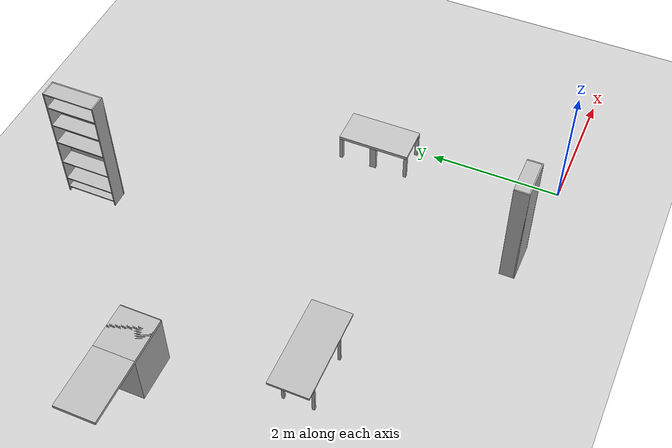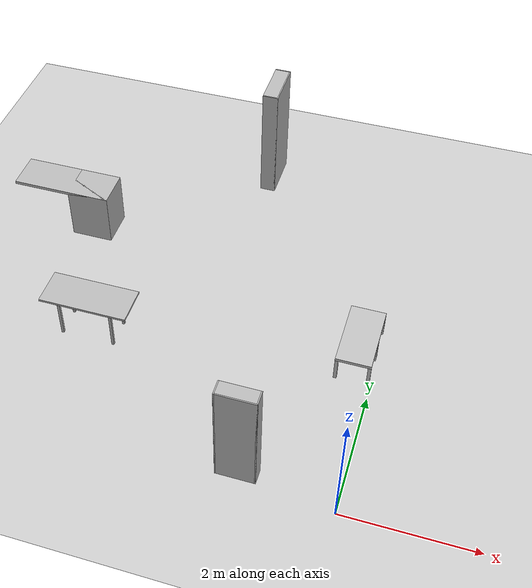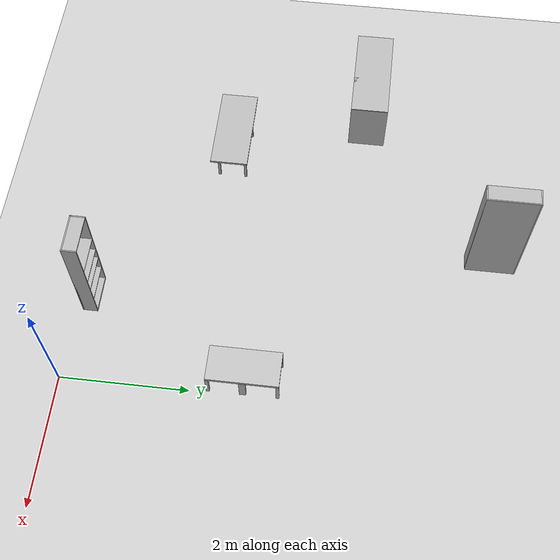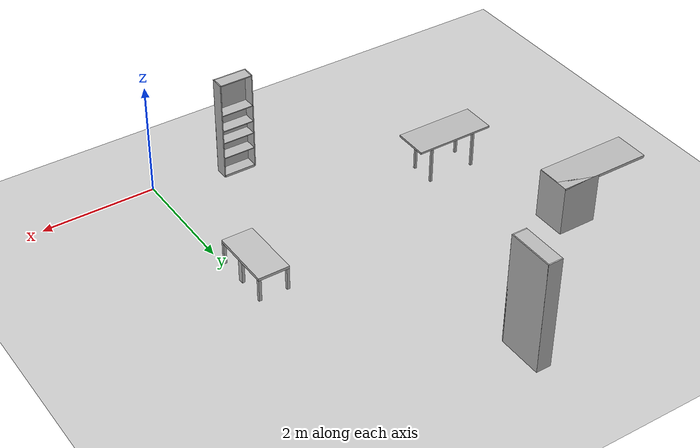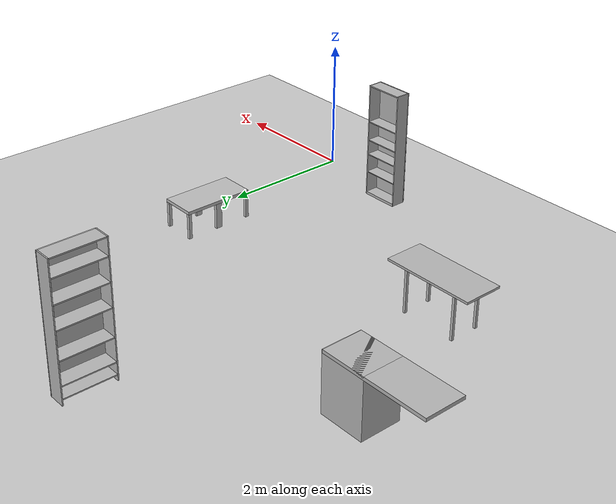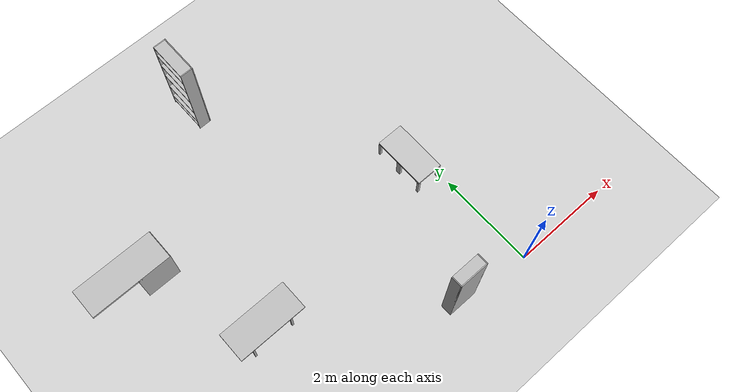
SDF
<sdf version="1.6">
 <world name="rwc2018">
  <light name="sun" type="directional">
   <direction>0.5 0.1 -0.9</direction>
   <pose>0 0 10 0 0 0</pose>
   <specular>0.2 0.2 0.2 1</specular>
   <diffuse>0.8 0.8 0.8 1</diffuse>
   <attenuation>
    <range>1000</range>
    <quadratic>0.001</quadratic>
    <constant>0.9</constant>
    <linear>0.01</linear>
   </attenuation>
  </light>
  <model name="initial_pose" type="waypoint"><pose>-11.0 8.5 0 0 0 0.0</pose><static>true</static></model>
  <model name="registration_table1" type="waypoint">
   <pose>-2.5 3.5 0 0 0 -1.57079632679</pose>
   <static>true</static>
  </model>
  <model name="registration_table2" type="waypoint">
   <pose>-3.5 4.5 0 0 0 -1.57079632679</pose>
   <static>true</static>
  </model>
  <model name="registration_table3" type="waypoint">
   <pose>-4.5 5.5 0 0 0 -1.57079632679</pose>
   <static>true</static>
  </model>
  <model name="exit_1_rips" type="waypoint">
   <pose>0.0 -1.2 0 0 0 -1.57079632679</pose>
   <static>true</static>
  </model>
  <model name="exit_2_rips" type="waypoint">
   <pose>0.0 -0.8 0 0 0 -1.57079632679</pose>
   <static>true</static>
  </model>
  <model name="exit_3_rips" type="waypoint">
   <pose>0.0 -0.4 0 0 0 -1.57079632679</pose>
   <static>true</static>
  </model>
  <model name="help_me_carry_starting_point" type="waypoint">
   <pose>-5.5 7.0 0 0 0 0.0</pose>
   <static>true</static>
  </model>
  <model name="gpsr_starting_point" type="waypoint"><pose>-5.5 7.0 0 0 0 0.0</pose><static>true</static></model>
  <model name="gpsr_meeting_point" type="waypoint"><pose>-5.5 7.0 0 0 0 0.0</pose><static>true</static></model>
  <model name="gpsr_exit_door" type="waypoint">
   <pose>0.0 -1.2 0 0 0 -1.57079632679</pose>
   <static>true</static>
  </model>
  <model name="gpsr_entrance" type="waypoint"><pose>-9.0 8.0 0 0 0 3.14</pose><static>true</static></model>
  <model name="eegpsr_starting_point1" type="waypoint">
   <pose>-4.25 8.5 0 0 0 -1.57079632679</pose>
   <static>true</static>
  </model>
  <model name="eegpsr_starting_point2" type="waypoint">
   <pose>-6 0.75 0 0 0 1.57079632679</pose>
   <static>true</static>
  </model>
  <model name="door" type="waypoint"><pose>-9.5 8.5 0 0 0 3.14159265359</pose><static>true</static></model>
  <model name="corridor" type="room">
   <link name="in">
    <virtual_volume name="in_vv">
     <geometry><box><size>3.5 1.5 2.01</size></box></geometry>
     <pose>2.0 -0.5 1.005 0 0 0</pose>
    </virtual_volume>
   </link>
   <pose>-10.5 8.5 0 0 0 0</pose>
   <static>true</static>
  </model>
  <model name="kitchen" type="room">
   <link name="in">
    <virtual_volume name="in_vv">
     <geometry><box><size>3.1 3.4 2.01</size></box></geometry>
     <pose>-0.65 1.0 1.005 0 0 0</pose>
    </virtual_volume>
   </link>
   <pose>-4.0 6.0 0 0 0 0</pose>
   <static>true</static>
  </model>
  <model name="bedroom" type="room">
   <link name="in">
    <virtual_volume name="in_vv">
     <geometry><box><size>2.9 2.9 2.01</size></box></geometry>
     <pose>0.75 0.25 1.005 0 0 0</pose>
    </virtual_volume>
   </link>
   <pose>-1.0 7.0 0 0 0 0</pose>
   <static>true</static>
  </model>
  <model name="dining_room" type="room">
   <link name="in">
    <virtual_volume name="in_vv">
     <geometry><box><size>3.4 4.4 2.01</size></box></geometry>
     <pose>-0.5 -0.5 1.005 0 0 0</pose>
    </virtual_volume>
   </link>
   <pose>-4.0 3.0 0 0 0 0</pose>
   <static>true</static>
  </model>
  <model name="living_room" type="room">
   <link name="in">
    <virtual_volume name="in_vv">
     <geometry><box><size>3.4 4.4 2.01</size></box></geometry>
     <pose>0.5 -0.5 1.005 0 0 0</pose>
    </virtual_volume>
   </link>
   <pose>-1.0 3.0 0 0 0 0</pose>
   <static>true</static>
  </model>
  <include><name>floor</name><uri>model://ground_plane</uri></include>
  <include>
   <pose>-1.46 0.24 0.0 0 0 1.57079632679</pose>
   <name>bookcase</name>
   <uri>model://rwc2018/bookcase</uri>
  </include>
  <include>
   <pose>-2.69 6.45 0.0 0 0 3.14159265359</pose>
   <name>cupboard</name>
   <uri>model://rwc2018/cupboard</uri>
  </include>
  <include>
   <pose>-4.4 2.1 0.0 0 0 1.57079632679</pose>
   <name>dining_table</name>
   <uri>model://rwc2018/diningtable</uri>
  </include>
  <include>
   <pose>-5.7 4.3 0.0 0 0 1.57079632679</pose>
   <name>counter</name>
   <uri>model://rwc2018/counter</uri>
  </include>
  <include>
   <pose>-5.22 4.3 0.0 0 0 1.57079632679</pose>
   <name>dishwasher</name>
   <uri>model://rwc2018/dishwasher</uri>
  </include>
  <include>
   <pose>-0.3 2.8 0.0 0 0 1.57079632679</pose>
   <name>end_table</name>
   <uri>model://rwc2018/endtable</uri>
  </include>
  <physics type="ode">
   <real_time_update_rate>333.0</real_time_update_rate>
   <max_step_size>0.003</max_step_size>
   <ode><constraints><cfm>0.0001</cfm></constraints><solver><type>quick</type><iters>100</iters></solver></ode>
  </physics>
 </world>
</sdf>

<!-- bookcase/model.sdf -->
<sdf version="1.6">
  <model name="rwc2018/bookcase">
    <link name="1_link">
      <collision name="1_col">
        <geometry>
          <box>
            <size>0.23 0.018 1.82</size>
          </box>
        </geometry>
      </collision>
      <visual name="1_vis">
        <geometry>
          <box>
            <size>0.23 0.018 1.82</size>
          </box>
        </geometry>
      </visual>
      <pose>0 -0.291 0.91 0 0 0</pose>
    </link>
    <link name="2_link">
      <collision name="2_col">
        <geometry>
          <box>
            <size>0.23 0.018 1.82</size>
          </box>
        </geometry>
      </collision>
      <visual name="2_vis">
        <geometry>
          <box>
            <size>0.23 0.018 1.82</size>
          </box>
        </geometry>
      </visual>
      <pose>0 0.291 0.91 0 0 0</pose>
    </link>
    <link name="3_link">
      <collision name="3_col">
        <geometry>
          <box>
            <size>0.018 0.6 1.82</size>
          </box>
        </geometry>
      </collision>
      <visual name="3_vis">
        <geometry>
          <box>
            <size>0.018 0.6 1.82</size>
          </box>
        </geometry>
      </visual>
      <pose>-0.106 0 0.91 0 0 0</pose>
    </link>
    <link name="4_link">
      <collision name="4_col">
        <geometry>
          <box>
            <size>0.212 0.564 0.018</size>
          </box>
        </geometry>
      </collision>
      <visual name="4_vis">
        <geometry>
          <box>
            <size>0.212 0.564 0.018</size>
          </box>
        </geometry>
      </visual>
      <pose>0.009 0 1.811 0 0 0</pose>
    </link>
    <link name="5_link">
      <collision name="5_col">
        <geometry>
          <box>
            <size>0.212 0.564 0.065</size>
          </box>
        </geometry>
      </collision>
      <visual name="5_vis">
        <geometry>
          <box>
            <size>0.212 0.564 0.065</size>
          </box>
        </geometry>
      </visual>
      <pose>0.009 0 0.001 0 0 0</pose>
    </link>
    <link name="6_link">
      <collision name="6_col">
        <geometry>
          <box>
            <size>0.212 0.564 0.015</size>
          </box>
        </geometry>
      </collision>
      <visual name="6_vis">
        <geometry>
          <box>
            <size>0.212 0.564 0.015</size>
          </box>
        </geometry>
      </visual>
      <pose>0.009 0 0.38 0 0 0</pose>
    </link>
    <link name="7_link">
      <collision name="7_col">
        <geometry>
          <box>
            <size>0.212 0.564 0.015</size>
          </box>
        </geometry>
      </collision>
      <visual name="7_vis">
        <geometry>
          <box>
            <size>0.212 0.564 0.015</size>
          </box>
        </geometry>
      </visual>
      <pose>0.009 0 0.68 0 0 0</pose>
    </link>
    <link name="8_link">
      <collision name="8_col">
        <geometry>
          <box>
            <size>0.212 0.564 0.015</size>
          </box>
        </geometry>
      </collision>
      <visual name="8_vis">
        <geometry>
          <box>
            <size>0.212 0.564 0.015</size>
          </box>
        </geometry>
      </visual>
      <pose>0.009 0 0.92 0 0 0</pose>
    </link>
    <link name="9_link">
      <collision name="9_col">
        <geometry>
          <box>
            <size>0.212 0.564 0.015</size>
          </box>
        </geometry>
      </collision>
      <visual name="9_vis">
        <geometry>
          <box>
            <size>0.212 0.564 0.015</size>
          </box>
        </geometry>
      </visual>
      <pose>0.009 0 1.225 0 0 0</pose>
    </link>
    <link name="in_front_of">
      <virtual_volume name="in_front_of_vv">
        <geometry>
          <box>
            <size>0.2 0.4 0.01</size>
          </box>
        </geometry>
        <pose>0.615 0.0 0.005 0 0 0</pose>
      </virtual_volume>
    </link>
    <link name="shelf1">
      <virtual_volume name="shelf1_vv">
        <geometry>
          <box>
            <size>0.192 0.504 0.19</size>
          </box>
        </geometry>
        <pose>0.009 0.0 0.17 0 0 0</pose>
      </virtual_volume>
    </link>
    <link name="shelf2">
      <virtual_volume name="shelf2_vv">
        <geometry>
          <box>
            <size>0.192 0.504 0.19</size>
          </box>
        </geometry>
        <pose>0.009 0.0 0.5 0 0 0</pose>
      </virtual_volume>
    </link>
    <link name="shelf3">
      <virtual_volume name="shelf3_vv">
        <geometry>
          <box>
            <size>0.192 0.504 0.19</size>
          </box>
        </geometry>
        <pose>0.009 0.0 0.8 0 0 0</pose>
      </virtual_volume>
    </link>
    <link name="shelf4">
      <virtual_volume name="shelf4_vv">
        <geometry>
          <box>
            <size>0.192 0.504 0.19</size>
          </box>
        </geometry>
        <pose>0.009 0.0 1.04 0 0 0</pose>
      </virtual_volume>
    </link>
    <link name="shelf5">
      <virtual_volume name="shelf5_vv">
        <geometry>
          <box>
            <size>0.192 0.504 0.19</size>
          </box>
        </geometry>
        <pose>0.009 0.0 1.345 0 0 0</pose>
      </virtual_volume>
    </link>
    <link name="on_top_of">
      <virtual_volume name="on_top_of_vv">
        <geometry>
          <box>
            <size>0.192 0.504 0.2</size>
          </box>
        </geometry>
        <pose>0.009 0.0 0.795 0 0 0</pose>
      </virtual_volume>
    </link>
    <static>true</static>
  </model>
</sdf>

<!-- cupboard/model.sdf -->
<sdf version="1.6">
  <model name="rwc2018/cupboard">
    <link name="1_link">
      <collision name="1_col">
        <geometry>
          <box>
            <size>0.26 0.018 2.02</size>
          </box>
        </geometry>
      </collision>
      <visual name="1_vis">
        <geometry>
          <box>
            <size>0.26 0.018 2.02</size>
          </box>
        </geometry>
      </visual>
      <pose>0 -0.391 1.01 0 0 0</pose>
    </link>
    <link name="2_link">
      <collision name="2_col">
        <geometry>
          <box>
            <size>0.26 0.018 2.02</size>
          </box>
        </geometry>
      </collision>
      <visual name="2_vis">
        <geometry>
          <box>
            <size>0.26 0.018 2.02</size>
          </box>
        </geometry>
      </visual>
      <pose>0 0.391 1.01 0 0 0</pose>
    </link>
    <link name="3_link">
      <collision name="3_col">
        <geometry>
          <box>
            <size>0.018 0.8 2.02</size>
          </box>
        </geometry>
      </collision>
      <visual name="3_vis">
        <geometry>
          <box>
            <size>0.018 0.8 2.02</size>
          </box>
        </geometry>
      </visual>
      <pose>-0.121 0 1.01 0 0 0</pose>
    </link>
    <link name="4_link">
      <collision name="4_col">
        <geometry>
          <box>
            <size>0.242 0.764 0.018</size>
          </box>
        </geometry>
      </collision>
      <visual name="4_vis">
        <geometry>
          <box>
            <size>0.242 0.764 0.018</size>
          </box>
        </geometry>
      </visual>
      <pose>0.009 0 2.011 0 0 0</pose>
    </link>
    <link name="5_link">
      <collision name="5_col">
        <geometry>
          <box>
            <size>0.242 0.764 0.018</size>
          </box>
        </geometry>
      </collision>
      <visual name="5_vis">
        <geometry>
          <box>
            <size>0.242 0.764 0.018</size>
          </box>
        </geometry>
      </visual>
      <pose>0.009 0 0.091 0 0 0</pose>
    </link>
    <link name="6_link">
      <collision name="6_col">
        <geometry>
          <box>
            <size>0.242 0.764 0.018</size>
          </box>
        </geometry>
      </collision>
      <visual name="6_vis">
        <geometry>
          <box>
            <size>0.242 0.764 0.018</size>
          </box>
        </geometry>
      </visual>
      <pose>0.009 0 0.276 0 0 0</pose>
    </link>
    <link name="7_link">
      <collision name="7_col">
        <geometry>
          <box>
            <size>0.242 0.764 0.018</size>
          </box>
        </geometry>
      </collision>
      <visual name="7_vis">
        <geometry>
          <box>
            <size>0.242 0.764 0.018</size>
          </box>
        </geometry>
      </visual>
      <pose>0.009 0 0.631 0 0 0</pose>
    </link>
    <link name="8_link">
      <collision name="8_col">
        <geometry>
          <box>
            <size>0.242 0.764 0.018</size>
          </box>
        </geometry>
      </collision>
      <visual name="8_vis">
        <geometry>
          <box>
            <size>0.242 0.764 0.018</size>
          </box>
        </geometry>
      </visual>
      <pose>0.009 0 1.051 0 0 0</pose>
    </link>
    <link name="9_link">
      <collision name="9_col">
        <geometry>
          <box>
            <size>0.242 0.764 0.018</size>
          </box>
        </geometry>
      </collision>
      <visual name="9_vis">
        <geometry>
          <box>
            <size>0.242 0.764 0.018</size>
          </box>
        </geometry>
      </visual>
      <pose>0.009 0 1.401 0 0 0</pose>
    </link>
    <link name="10_link">
      <collision name="10_col">
        <geometry>
          <box>
            <size>0.242 0.764 0.018</size>
          </box>
        </geometry>
      </collision>
      <visual name="10_vis">
        <geometry>
          <box>
            <size>0.242 0.764 0.018</size>
          </box>
        </geometry>
      </visual>
      <pose>0.009 0 1.751 0 0 0</pose>
    </link>
    <link name="in_front_of">
      <virtual_volume name="in_front_of_vv">
        <geometry>
          <box>
            <size>0.2 0.54 0.01</size>
          </box>
        </geometry>
        <pose>0.63 0.0 0.005 0 0 0</pose>
      </virtual_volume>
    </link>
    <link name="shelf1">
      <virtual_volume name="shelf1_vv">
        <geometry>
          <box>
            <size>0.21 0.704 0.16</size>
          </box>
        </geometry>
        <pose>0.015 0.0 0.2 0 0 0</pose>
      </virtual_volume>
    </link>
    <link name="shelf2">
      <virtual_volume name="shelf2_vv">
        <geometry>
          <box>
            <size>0.21 0.704 0.25</size>
          </box>
        </geometry>
        <pose>0.015 0.0 0.43 0 0 0</pose>
      </virtual_volume>
    </link>
    <link name="shelf3">
      <virtual_volume name="shelf3_vv">
        <geometry>
          <box>
            <size>0.21 0.704 0.25</size>
          </box>
        </geometry>
        <pose>0.015 0.0 0.785 0 0 0</pose>
      </virtual_volume>
    </link>
    <link name="shelf4">
      <virtual_volume name="shelf4_vv">
        <geometry>
          <box>
            <size>0.21 0.704 0.25</size>
          </box>
        </geometry>
        <pose>0.015 0.0 1.205 0 0 0</pose>
      </virtual_volume>
    </link>
    <link name="shelf5">
      <virtual_volume name="shelf5_vv">
        <geometry>
          <box>
            <size>0.21 0.704 0.25</size>
          </box>
        </geometry>
        <pose>0.015 0.0 1.555 0 0 0</pose>
      </virtual_volume>
    </link>
    <link name="shelf6">
      <virtual_volume name="shelf6_vv">
        <geometry>
          <box>
            <size>0.21 0.704 0.22</size>
          </box>
        </geometry>
        <pose>0.015 0.0 1.86 0 0 0</pose>
      </virtual_volume>
    </link>
    <link name="on_top_of">
      <virtual_volume name="on_top_of_vv">
        <geometry>
          <box>
            <size>0.21 0.704 0.25</size>
          </box>
        </geometry>
        <pose>0.015 0.0 1.205 0 0 0</pose>
      </virtual_volume>
    </link>
    <static>true</static>
  </model>
</sdf>

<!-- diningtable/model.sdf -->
<sdf version="1.6">
  <model name="rwc2018/diningtable">
    <link name="1_link">
      <collision name="1_col">
        <geometry>
          <box>
            <size>0.6 1.4 0.035</size>
          </box>
        </geometry>
      </collision>
      <visual name="1_vis">
        <geometry>
          <box>
            <size>0.6 1.4 0.035</size>
          </box>
        </geometry>
      </visual>
      <pose>0 0 0.7175 0 0 0</pose>
    </link>
    <link name="2_link">
      <collision name="2_col">
        <geometry>
          <box>
            <size>0.04 0.04 0.7</size>
          </box>
        </geometry>
      </collision>
      <visual name="2_vis">
        <geometry>
          <box>
            <size>0.04 0.04 0.7</size>
          </box>
        </geometry>
      </visual>
      <pose>-0.22 -0.42 0.35 0 0 0</pose>
    </link>
    <link name="3_link">
      <collision name="3_col">
        <geometry>
          <box>
            <size>0.04 0.04 0.7</size>
          </box>
        </geometry>
      </collision>
      <visual name="3_vis">
        <geometry>
          <box>
            <size>0.04 0.04 0.7</size>
          </box>
        </geometry>
      </visual>
      <pose>-0.22 0.42 0.35 0 0 0</pose>
    </link>
    <link name="4_link">
      <collision name="4_col">
        <geometry>
          <box>
            <size>0.04 0.04 0.7</size>
          </box>
        </geometry>
      </collision>
      <visual name="4_vis">
        <geometry>
          <box>
            <size>0.04 0.04 0.7</size>
          </box>
        </geometry>
      </visual>
      <pose>0.22 -0.42 0.35 0 0 0</pose>
    </link>
    <link name="5_link">
      <collision name="5_col">
        <geometry>
          <box>
            <size>0.04 0.04 0.7</size>
          </box>
        </geometry>
      </collision>
      <visual name="5_vis">
        <geometry>
          <box>
            <size>0.04 0.04 0.7</size>
          </box>
        </geometry>
      </visual>
      <pose>0.22 0.42 0.35 0 0 0</pose>
    </link>
    <link name="on_top_of">
      <virtual_volume name="on_top_of_vv">
        <geometry>
          <box>
            <size>0.58 0.96 0.25</size>
          </box>
        </geometry>
        <pose>0.0 0.0 0.88 0 0 0</pose>
      </virtual_volume>
    </link>
    <link name="in_front_of">
      <virtual_volume name="in_front_of_vv">
        <geometry>
          <box>
            <size>0.2 0.1 0.01</size>
          </box>
        </geometry>
        <pose>0.95 0.0 0.005 0 0 0</pose>
      </virtual_volume>
    </link>
    <link name="on_right_of">
      <virtual_volume name="on_right_of_vv">
        <geometry>
          <box>
            <size>0.54 0.4 0.01</size>
          </box>
        </geometry>
        <pose>0.0 1.2 0.005 0 0 0</pose>
      </virtual_volume>
    </link>
    <link name="in_back_of">
      <virtual_volume name="in_back_of_vv">
        <geometry>
          <box>
            <size>0.2 0.1 0.01</size>
          </box>
        </geometry>
        <pose>-0.95 0.0 0.005 0 0 0</pose>
      </virtual_volume>
    </link>
    <static>true</static>
  </model>
</sdf>

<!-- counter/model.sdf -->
<sdf version="1.6">
  <model name="rwc2018/counter">
    <link name="1_link">
      <collision name="1_col">
        <geometry>
          <box>
            <size>0.61 1.63 0.05</size>
          </box>
        </geometry>
      </collision>
      <visual name="1_vis">
        <geometry>
          <box>
            <size>0.61 1.63 0.05</size>
          </box>
        </geometry>
      </visual>
      <pose>0 0 0.885 0 0 0</pose>
    </link>
    <link name="on_top_of">
      <virtual_volume name="on_top_of_vv">
        <geometry>
          <box>
            <size>0.55 1.6 0.25</size>
          </box>
        </geometry>
        <pose>0.0 0.0 1.055 0 0 0</pose>
      </virtual_volume>
    </link>
    <link name="in_front_of">
      <virtual_volume name="in_front_of_vv">
        <geometry>
          <box>
            <size>0.4 1.3 0.01</size>
          </box>
        </geometry>
        <pose>0.8 0.0 0.005 0 0 0</pose>
      </virtual_volume>
    </link>
    <static>true</static>
  </model>
</sdf>

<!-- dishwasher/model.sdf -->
<sdf version="1.6">
  <model name="rwc2018/dishwasher">
    <link name="1_link">
      <collision name="1_col">
        <geometry>
          <box>
            <size>0.61 0.69 0.91</size>
          </box>
        </geometry>
      </collision>
      <visual name="1_vis">
        <geometry>
          <box>
            <size>0.61 0.69 0.91</size>
          </box>
        </geometry>
      </visual>
      <pose>0 0 0.455 0 0 0</pose>
    </link>
    <link name="on_top_of">
      <virtual_volume name="on_top_of_vv">
        <geometry>
          <box>
            <size>0.59 0.63 0.25</size>
          </box>
        </geometry>
        <pose>0.0 0.0 1.055 0 0 0</pose>
      </virtual_volume>
    </link>
    <link name="in_front_of">
      <virtual_volume name="in_front_of_vv">
        <geometry>
          <box>
            <size>0.2 0.49 0.01</size>
          </box>
        </geometry>
        <pose>0.805 0.0 0.005 0 0 0</pose>
      </virtual_volume>
    </link>
    <link name="to_the_side_of">
      <virtual_volume name="to_the_side_of_vv">
        <geometry>
          <box>
            <size>0.575 0.3 0.01</size>
          </box>
        </geometry>
        <pose>0.9125 -0.85 0.005 0 0 0</pose>
      </virtual_volume>
    </link>
    <static>true</static>
  </model>
</sdf>

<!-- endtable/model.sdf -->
<sdf version="1.6">
  <model name="rwc2018/endtable">
    <link name="1_link">
      <collision name="1_col">
        <geometry>
          <box>
            <size>1.1 0.55 0.05</size>
          </box>
        </geometry>
      </collision>
      <visual name="1_vis">
        <geometry>
          <box>
            <size>1.1 0.55 0.05</size>
          </box>
        </geometry>
        <material>
          <ambient>0.75 0.75 0.75 1</ambient>
        </material>
      </visual>
      <pose>0 0 0.425 0 0 0</pose>
    </link>
    <link name="2_link">
      <collision name="2_col">
        <geometry>
          <box>
            <size>0.05 0.05 0.4</size>
          </box>
        </geometry>
      </collision>
      <visual name="2_vis">
        <geometry>
          <box>
            <size>0.05 0.05 0.4</size>
          </box>
        </geometry>
        <material>
          <ambient>0.75 0.75 0.75 1</ambient>
        </material>
      </visual>
      <pose>-0.525 -0.25 0.2 0 0 0</pose>
    </link>
    <link name="3_link">
      <collision name="3_col">
        <geometry>
          <box>
            <size>0.05 0.05 0.4</size>
          </box>
        </geometry>
      </collision>
      <visual name="3_vis">
        <geometry>
          <box>
            <size>0.05 0.05 0.4</size>
          </box>
        </geometry>
        <material>
          <ambient>0.75 0.75 0.75 1</ambient>
        </material>
      </visual>
      <pose>0.525 -0.25 0.2 0 0 0</pose>
    </link>
    <link name="4_link">
      <collision name="4_col">
        <geometry>
          <box>
            <size>0.05 0.05 0.4</size>
          </box>
        </geometry>
      </collision>
      <visual name="4_vis">
        <geometry>
          <box>
            <size>0.05 0.05 0.4</size>
          </box>
        </geometry>
        <material>
          <ambient>0.75 0.75 0.75 1</ambient>
        </material>
      </visual>
      <pose>-0.525 0.25 0.2 0 0 0</pose>
    </link>
    <link name="5_link">
      <collision name="5_col">
        <geometry>
          <box>
            <size>0.05 0.05 0.4</size>
          </box>
        </geometry>
      </collision>
      <visual name="5_vis">
        <geometry>
          <box>
            <size>0.05 0.05 0.4</size>
          </box>
        </geometry>
        <material>
          <ambient>0.75 0.75 0.75 1</ambient>
        </material>
      </visual>
      <pose>0.525 0.25 0.2 0 0 0</pose>
    </link>
    <link name="6_link">
      <collision name="6_col">
        <geometry>
          <box>
            <size>0.1 0.05 0.4</size>
          </box>
        </geometry>
      </collision>
      <visual name="6_vis">
        <geometry>
          <box>
            <size>0.1 0.05 0.4</size>
          </box>
        </geometry>
        <material>
          <ambient>0.75 0.75 0.75 1</ambient>
        </material>
      </visual>
      <pose>0 0.25 0.2 0 0 0</pose>
    </link>
    <link name="7_link">
      <collision name="7_col">
        <geometry>
          <box>
            <size>0.1 0.05 0.4</size>
          </box>
        </geometry>
      </collision>
      <visual name="7_vis">
        <geometry>
          <box>
            <size>0.1 0.05 0.4</size>
          </box>
        </geometry>
        <material>
          <ambient>0.75 0.75 0.75 1</ambient>
        </material>
      </visual>
      <pose>0 -0.25 0.2 0 0 0</pose>
    </link>
    <link name="on_top_of">
      <virtual_volume name="on_top_of_vv">
        <geometry>
          <box>
            <size>1.04 0.49 0.25</size>
          </box>
        </geometry>
        <pose>0.0 0.0 0.595 0 0 0</pose>
      </virtual_volume>
    </link>
    <link name="in_front_of">
      <virtual_volume name="in_front_of_vv">
        <geometry>
          <box>
            <size>1.0 0.6 0.01</size>
          </box>
        </geometry>
        <pose>0.0 0.8 0.005 0 0 0</pose>
      </virtual_volume>
    </link>
    <static>true</static>
  </model>
</sdf>
